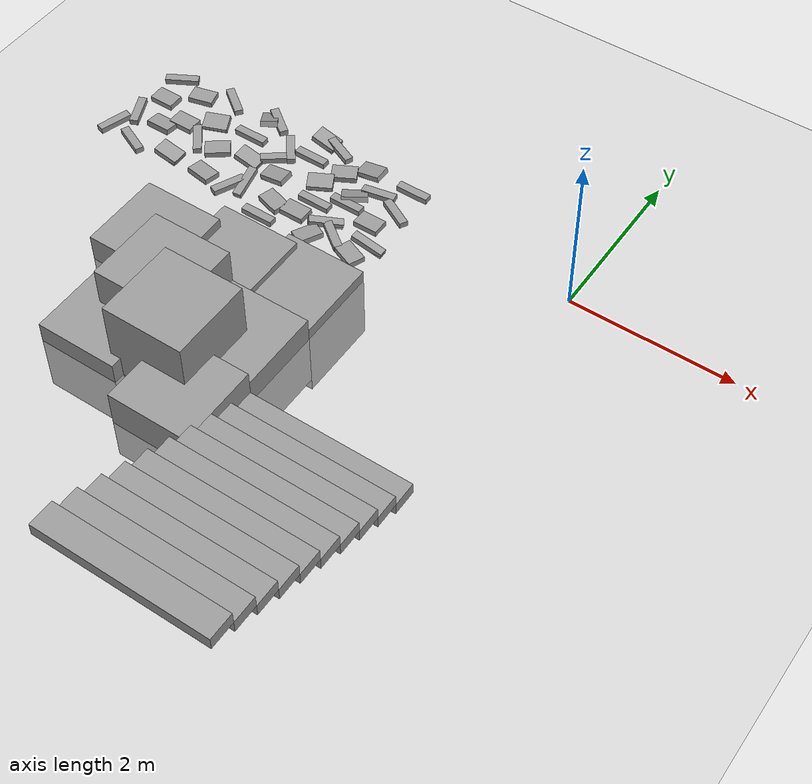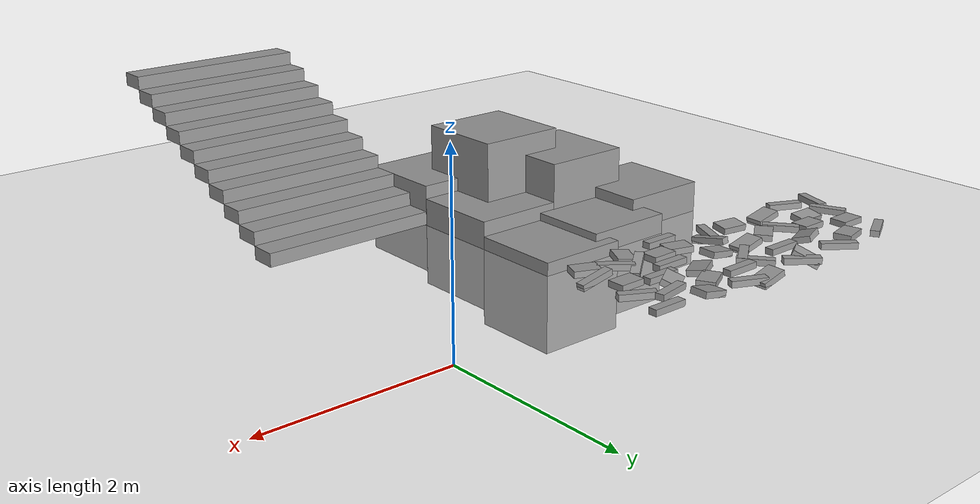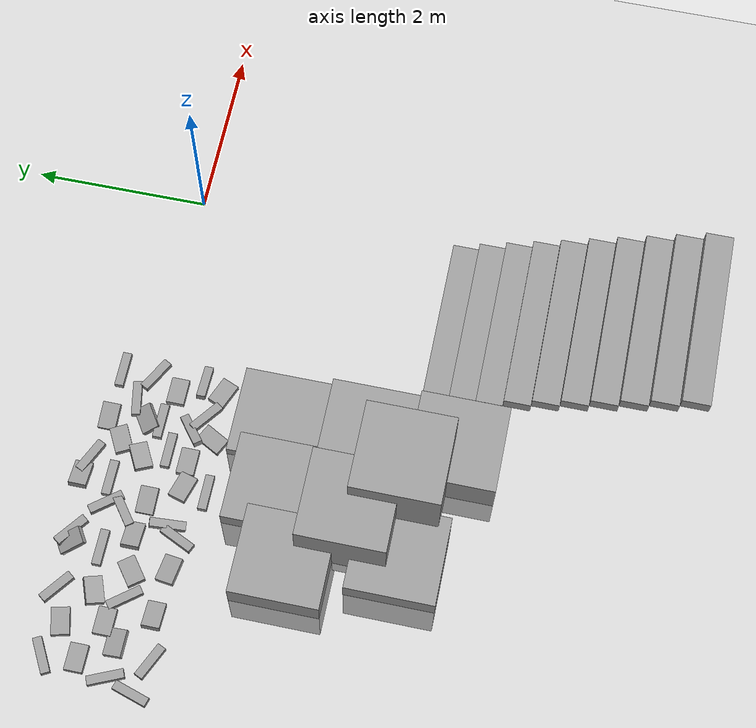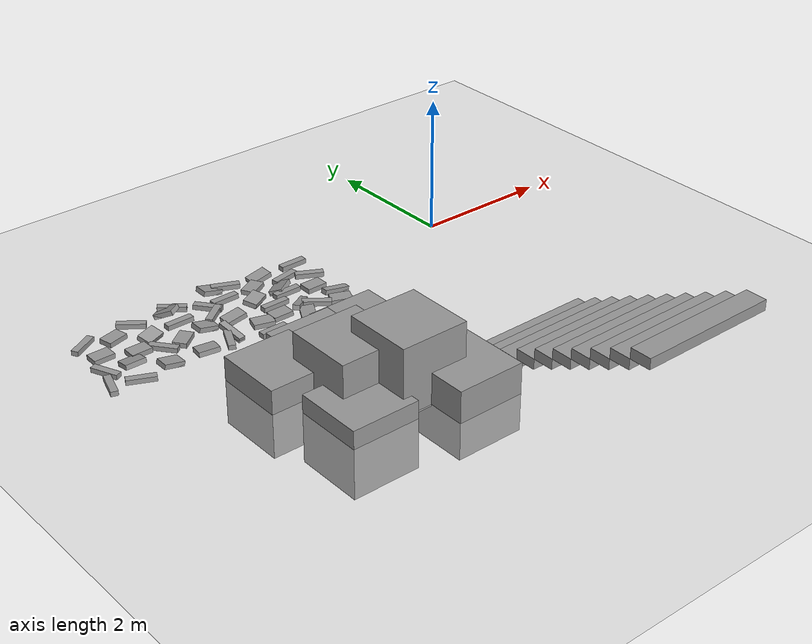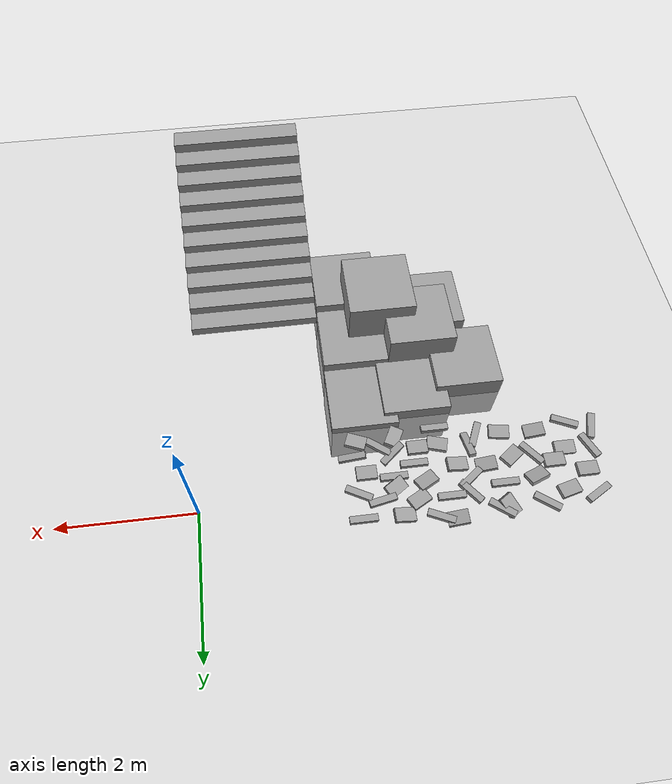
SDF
<sdf version="1.7">
 <world name="default">
  <model name="ground_plane">
   <static>1</static>
   <link name="link">
    <collision name="collision">
     <geometry><plane><normal>0 0 1</normal><size>100 100</size></plane></geometry>
     <surface><friction><ode><mu>200</mu><mu2>200</mu2></ode></friction></surface>
    </collision>
    <visual name="visual">
     <cast_shadows>0</cast_shadows>
     <geometry><plane><normal>0 0 1</normal><size>100 100</size></plane></geometry>
     <material>
      <script><uri>file://media/materials/scripts/gazebo.material</uri><name>Gazebo/Grey</name></script>
     </material>
    </visual>
   </link>
  </model>
  <model name="box_0.4_0.1_0.07_6">
   <pose>-2.83467 -0.561057 0 0 0.21967 0.65136</pose>
   <link name="Stairs_14">
    <visual name="Stairs_14_Visual_0">
     <pose>0 0 0.035 0 -0 0</pose>
     <geometry><box><size>0.4 0.1 0.07</size></box></geometry>
     <material>
      <script><uri>file://media/materials/scripts/gazebo.material</uri><name>Gazebo/Grey</name></script>
      <ambient>1 1 1 1</ambient>
     </material>
     <meta><layer>0</layer></meta>
    </visual>
    <collision name="Stairs_14_Collision_0">
     <geometry><box><size>0.4 0.1 0.07</size></box></geometry>
     <pose>0 0 0.035 0 -0 0</pose>
     <surface><friction><ode><mu>200</mu><mu2>200</mu2></ode></friction></surface>
    </collision>
   </link>
   <static>1</static>
  </model>
  <model name="box_0.4_0.1_0.07_7">
   <pose>-3.9527 -0.560939 0 0 -0.198986 1.69782</pose>
   <link name="Stairs_14">
    <visual name="Stairs_14_Visual_0">
     <pose>0 0 0.035 0 -0 0</pose>
     <geometry><box><size>0.4 0.1 0.07</size></box></geometry>
     <material>
      <script><uri>file://media/materials/scripts/gazebo.material</uri><name>Gazebo/Grey</name></script>
      <ambient>1 1 1 1</ambient>
     </material>
     <meta><layer>0</layer></meta>
    </visual>
    <collision name="Stairs_14_Collision_0">
     <geometry><box><size>0.4 0.1 0.07</size></box></geometry>
     <pose>0 0 0.035 0 -0 0</pose>
     <surface><friction><ode><mu>200</mu><mu2>200</mu2></ode></friction></surface>
    </collision>
   </link>
   <static>1</static>
  </model>
  <model name="box_0.4_0.1_0.07_8">
   <pose>-3.35327 0.459325 0 0 0 -0.427504</pose>
   <link name="Stairs_14">
    <visual name="Stairs_14_Visual_0">
     <pose>0 0 0.035 0 -0 0</pose>
     <geometry><box><size>0.4 0.1 0.07</size></box></geometry>
     <material>
      <script><uri>file://media/materials/scripts/gazebo.material</uri><name>Gazebo/Grey</name></script>
      <ambient>1 1 1 1</ambient>
     </material>
     <meta><layer>0</layer></meta>
    </visual>
    <collision name="Stairs_14_Collision_0">
     <geometry><box><size>0.4 0.1 0.07</size></box></geometry>
     <pose>0 0 0.035 0 -0 0</pose>
     <surface><friction><ode><mu>200</mu><mu2>200</mu2></ode></friction></surface>
    </collision>
   </link>
   <static>1</static>
  </model>
  <model name="box_0.4_0.1_0.07_9">
   <pose>-3.84177 0.151803 0 0 0 -0.909347</pose>
   <link name="Stairs_14">
    <visual name="Stairs_14_Visual_0">
     <pose>0 0 0.035 0 -0 0</pose>
     <geometry><box><size>0.4 0.1 0.07</size></box></geometry>
     <material>
      <script><uri>file://media/materials/scripts/gazebo.material</uri><name>Gazebo/Grey</name></script>
      <ambient>1 1 1 1</ambient>
     </material>
     <meta><layer>0</layer></meta>
    </visual>
    <collision name="Stairs_14_Collision_0">
     <geometry><box><size>0.4 0.1 0.07</size></box></geometry>
     <pose>0 0 0.035 0 -0 0</pose>
     <surface><friction><ode><mu>200</mu><mu2>200</mu2></ode></friction></surface>
    </collision>
   </link>
   <static>1</static>
  </model>
  <model name="box_0.4_0.1_0.07_10">
   <pose>-2.5817 0.133983 0 0 -0 0.188316</pose>
   <link name="Stairs_14">
    <visual name="Stairs_14_Visual_0">
     <pose>0 0 0.035 0 -0 0</pose>
     <geometry><box><size>0.4 0.1 0.07</size></box></geometry>
     <material>
      <script><uri>file://media/materials/scripts/gazebo.material</uri><name>Gazebo/Grey</name></script>
      <ambient>1 1 1 1</ambient>
     </material>
     <meta><layer>0</layer></meta>
    </visual>
    <collision name="Stairs_14_Collision_0">
     <geometry><box><size>0.4 0.1 0.07</size></box></geometry>
     <pose>0 0 0.035 0 -0 0</pose>
     <surface><friction><ode><mu>200</mu><mu2>200</mu2></ode></friction></surface>
    </collision>
   </link>
   <static>1</static>
  </model>
  <model name="box_0.3_0.2_0.1_1">
   <pose>-2.32668 -0.803117 0 0 0 -0.389703</pose>
   <link name="Stairs_9">
    <visual name="Stairs_9_Visual_0">
     <pose>0 0 0.035 0 -0 0</pose>
     <geometry><box><size>0.3 0.2 0.07</size></box></geometry>
     <material>
      <script><uri>file://media/materials/scripts/gazebo.material</uri><name>Gazebo/Grey</name></script>
      <ambient>1 1 1 1</ambient>
     </material>
     <meta><layer>0</layer></meta>
    </visual>
    <collision name="Stairs_9_Collision_0">
     <geometry><box><size>0.3 0.2 0.07</size></box></geometry>
     <pose>0 0 0.035 0 -0 0</pose>
     <surface><friction><ode><mu>200</mu><mu2>200</mu2></ode></friction></surface>
    </collision>
   </link>
   <static>1</static>
  </model>
  <model name="box_0.3_0.2_0.1_2">
   <pose>-3.24691 -0.07902 0 0.162224 -0 0.485941</pose>
   <link name="Stairs_9">
    <visual name="Stairs_9_Visual_0">
     <pose>0 0 0.035 0 -0 0</pose>
     <geometry><box><size>0.3 0.2 0.07</size></box></geometry>
     <material>
      <script><uri>file://media/materials/scripts/gazebo.material</uri><name>Gazebo/Grey</name></script>
      <ambient>1 1 1 1</ambient>
     </material>
     <meta><layer>0</layer></meta>
    </visual>
    <collision name="Stairs_9_Collision_0">
     <geometry><box><size>0.3 0.2 0.07</size></box></geometry>
     <pose>0 0 0.035 0 -0 0</pose>
     <surface><friction><ode><mu>200</mu><mu2>200</mu2></ode></friction></surface>
    </collision>
   </link>
   <static>1</static>
  </model>
  <model name="box_0.3_0.2_0.1_4">
   <pose>-3.50067 -0.629827 0 0 0 -0.287884</pose>
   <link name="Stairs_9">
    <visual name="Stairs_9_Visual_0">
     <pose>0 0 0.035 0 -0 0</pose>
     <geometry><box><size>0.3 0.2 0.07</size></box></geometry>
     <material>
      <script><uri>file://media/materials/scripts/gazebo.material</uri><name>Gazebo/Grey</name></script>
      <ambient>1 1 1 1</ambient>
     </material>
     <meta><layer>0</layer></meta>
    </visual>
    <collision name="Stairs_9_Collision_0">
     <geometry><box><size>0.3 0.2 0.07</size></box></geometry>
     <pose>0 0 0.035 0 -0 0</pose>
     <surface><friction><ode><mu>200</mu><mu2>200</mu2></ode></friction></surface>
    </collision>
   </link>
   <static>1</static>
  </model>
  <model name="box_0.3_0.2_0.1_6">
   <pose>-2.40905 -0.299713 0 0 -0 0</pose>
   <link name="Stairs_9">
    <visual name="Stairs_9_Visual_0">
     <pose>0 0 0.035 0 -0 0</pose>
     <geometry><box><size>0.3 0.2 0.07</size></box></geometry>
     <material>
      <script><uri>file://media/materials/scripts/gazebo.material</uri><name>Gazebo/Grey</name></script>
      <ambient>1 1 1 1</ambient>
     </material>
     <meta><layer>0</layer></meta>
    </visual>
    <collision name="Stairs_9_Collision_0">
     <geometry><box><size>0.3 0.2 0.07</size></box></geometry>
     <pose>0 0 0.035 0 -0 0</pose>
     <surface><friction><ode><mu>200</mu><mu2>200</mu2></ode></friction></surface>
    </collision>
   </link>
   <static>1</static>
  </model>
  <model name="box_0.3_0.2_0.1_11">
   <pose>-4.83425 0.032148 0 0.293641 -0 0.364797</pose>
   <link name="Stairs_9">
    <visual name="Stairs_9_Visual_0">
     <pose>0 0 0.035 0 -0 0</pose>
     <geometry><box><size>0.3 0.2 0.07</size></box></geometry>
     <material>
      <script><uri>file://media/materials/scripts/gazebo.material</uri><name>Gazebo/Grey</name></script>
      <ambient>1 1 1 1</ambient>
     </material>
     <meta><layer>0</layer></meta>
    </visual>
    <collision name="Stairs_9_Collision_0">
     <geometry><box><size>0.3 0.2 0.07</size></box></geometry>
     <pose>0 0 0.035 0 -0 0</pose>
     <surface><friction><ode><mu>200</mu><mu2>200</mu2></ode></friction></surface>
    </collision>
   </link>
   <static>1</static>
  </model>
  <model name="box_0.3_0.2_0.1_13">
   <pose>-4.44487 -0.717451 0 -0.093999 -0 -0.154705</pose>
   <link name="Stairs_9">
    <visual name="Stairs_9_Visual_0">
     <pose>0 0 0.035 0 -0 0</pose>
     <geometry><box><size>0.3 0.2 0.07</size></box></geometry>
     <material>
      <script><uri>file://media/materials/scripts/gazebo.material</uri><name>Gazebo/Grey</name></script>
      <ambient>1 1 1 1</ambient>
     </material>
     <meta><layer>0</layer></meta>
    </visual>
    <collision name="Stairs_9_Collision_0">
     <geometry><box><size>0.3 0.2 0.07</size></box></geometry>
     <pose>0 0 0.035 0 -0 0</pose>
     <surface><friction><ode><mu>200</mu><mu2>200</mu2></ode></friction></surface>
    </collision>
   </link>
   <static>1</static>
  </model>
  <model name="box_0.3_0.2_0.1_18">
   <pose>-5.13742 -0.186069 0 0 -0 0</pose>
   <link name="Stairs_9">
    <visual name="Stairs_9_Visual_0">
     <pose>0 0 0.035 0 -0 0</pose>
     <geometry><box><size>0.3 0.2 0.07</size></box></geometry>
     <material>
      <script><uri>file://media/materials/scripts/gazebo.material</uri><name>Gazebo/Grey</name></script>
      <ambient>1 1 1 1</ambient>
     </material>
     <meta><layer>0</layer></meta>
    </visual>
    <collision name="Stairs_9_Collision_0">
     <geometry><box><size>0.3 0.2 0.07</size></box></geometry>
     <pose>0 0 0.035 0 -0 0</pose>
     <surface><friction><ode><mu>200</mu><mu2>200</mu2></ode></friction></surface>
    </collision>
   </link>
   <static>1</static>
  </model>
  <model name="box_0.4_0.1_0.07_13">
   <pose>-4.87489 0.421648 0 0 0 -0.645463</pose>
   <link name="Stairs_14">
    <visual name="Stairs_14_Visual_0">
     <pose>0 0 0.035 0 -0 0</pose>
     <geometry><box><size>0.4 0.1 0.07</size></box></geometry>
     <material>
      <script><uri>file://media/materials/scripts/gazebo.material</uri><name>Gazebo/Grey</name></script>
      <ambient>1 1 1 1</ambient>
     </material>
     <meta><layer>0</layer></meta>
    </visual>
    <collision name="Stairs_14_Collision_0">
     <geometry><box><size>0.4 0.1 0.07</size></box></geometry>
     <pose>0 0 0.035 0 -0 0</pose>
     <surface><friction><ode><mu>200</mu><mu2>200</mu2></ode></friction></surface>
    </collision>
   </link>
   <static>1</static>
  </model>
  <model name="box_0.4_0.1_0.07_15">
   <pose>-5.63027 0.375388 0 0 -0 0.50181</pose>
   <link name="Stairs_14">
    <visual name="Stairs_14_Visual_0">
     <pose>0 0 0.035 0 -0 0</pose>
     <geometry><box><size>0.4 0.1 0.07</size></box></geometry>
     <material>
      <script><uri>file://media/materials/scripts/gazebo.material</uri><name>Gazebo/Grey</name></script>
      <ambient>1 1 1 1</ambient>
     </material>
     <meta><layer>0</layer></meta>
    </visual>
    <collision name="Stairs_14_Collision_0">
     <geometry><box><size>0.4 0.1 0.07</size></box></geometry>
     <pose>0 0 0.035 0 -0 0</pose>
     <surface><friction><ode><mu>200</mu><mu2>200</mu2></ode></friction></surface>
    </collision>
   </link>
   <static>1</static>
  </model>
  <model name="box_0.4_0.1_0.07_16">
   <pose>-5.7174 -0.345289 0 0 0 -1.15775</pose>
   <link name="Stairs_14">
    <visual name="Stairs_14_Visual_0">
     <pose>0 0 0.035 0 -0 0</pose>
     <geometry><box><size>0.4 0.1 0.07</size></box></geometry>
     <material>
      <script><uri>file://media/materials/scripts/gazebo.material</uri><name>Gazebo/Grey</name></script>
      <ambient>1 1 1 1</ambient>
     </material>
     <meta><layer>0</layer></meta>
    </visual>
    <collision name="Stairs_14_Collision_0">
     <geometry><box><size>0.4 0.1 0.07</size></box></geometry>
     <pose>0 0 0.035 0 -0 0</pose>
     <surface><friction><ode><mu>200</mu><mu2>200</mu2></ode></friction></surface>
    </collision>
   </link>
   <static>1</static>
  </model>
  <model name="box_0.4_0.1_0.07_17">
   <pose>-5.45955 -0.765501 0 0 0 -0.432025</pose>
   <link name="Stairs_14">
    <visual name="Stairs_14_Visual_0">
     <pose>0 0 0.035 0 -0 0</pose>
     <geometry><box><size>0.4 0.1 0.07</size></box></geometry>
     <material>
      <script><uri>file://media/materials/scripts/gazebo.material</uri><name>Gazebo/Grey</name></script>
      <ambient>1 1 1 1</ambient>
     </material>
     <meta><layer>0</layer></meta>
    </visual>
    <collision name="Stairs_14_Collision_0">
     <geometry><box><size>0.4 0.1 0.07</size></box></geometry>
     <pose>0 0 0.035 0 -0 0</pose>
     <surface><friction><ode><mu>200</mu><mu2>200</mu2></ode></friction></surface>
    </collision>
   </link>
   <static>1</static>
  </model>
  <model name="box_0.4_0.1_0.07_22">
   <pose>-4.35317 0.072456 0 0 -0 0</pose>
   <link name="Stairs_14">
    <visual name="Stairs_14_Visual_0">
     <pose>0 0 0.035 0 -0 0</pose>
     <geometry><box><size>0.4 0.1 0.07</size></box></geometry>
     <material>
      <script><uri>file://media/materials/scripts/gazebo.material</uri><name>Gazebo/Grey</name></script>
      <ambient>1 1 1 1</ambient>
     </material>
     <meta><layer>0</layer></meta>
    </visual>
    <collision name="Stairs_14_Collision_0">
     <geometry><box><size>0.4 0.1 0.07</size></box></geometry>
     <pose>0 0 0.035 0 -0 0</pose>
     <surface><friction><ode><mu>200</mu><mu2>200</mu2></ode></friction></surface>
    </collision>
   </link>
   <static>1</static>
  </model>
  <model name="box_0.3_0.2_0.1_26">
   <pose>-2.84302 0.380803 0 0 -0.200079 0</pose>
   <link name="Stairs_9">
    <visual name="Stairs_9_Visual_0">
     <pose>0 0 0.035 0 -0 0</pose>
     <geometry><box><size>0.3 0.2 0.07</size></box></geometry>
     <material>
      <script><uri>file://media/materials/scripts/gazebo.material</uri><name>Gazebo/Grey</name></script>
      <ambient>1 1 1 1</ambient>
     </material>
     <meta><layer>0</layer></meta>
    </visual>
    <collision name="Stairs_9_Collision_0">
     <geometry><box><size>0.3 0.2 0.07</size></box></geometry>
     <pose>0 0 0.035 0 -0 0</pose>
     <surface><friction><ode><mu>200</mu><mu2>200</mu2></ode></friction></surface>
    </collision>
   </link>
   <static>1</static>
  </model>
  <model name="box_0.3_0.2_0.1_27">
   <pose>-4.33028 0.401558 0 0 -0.4283 -1.0174</pose>
   <link name="Stairs_9">
    <visual name="Stairs_9_Visual_0">
     <pose>0 0 0.035 0 -0 0</pose>
     <geometry><box><size>0.3 0.2 0.07</size></box></geometry>
     <material>
      <script><uri>file://media/materials/scripts/gazebo.material</uri><name>Gazebo/Grey</name></script>
      <ambient>1 1 1 1</ambient>
     </material>
     <meta><layer>0</layer></meta>
    </visual>
    <collision name="Stairs_9_Collision_0">
     <geometry><box><size>0.3 0.2 0.07</size></box></geometry>
     <pose>0 0 0.035 0 -0 0</pose>
     <surface><friction><ode><mu>200</mu><mu2>200</mu2></ode></friction></surface>
    </collision>
   </link>
   <static>1</static>
  </model>
  <model name="box_0.3_0.2_0.1_28">
   <pose>-3.72262 -0.283281 0 0 -0.157712 0</pose>
   <link name="Stairs_9">
    <visual name="Stairs_9_Visual_0">
     <pose>0 0 0.035 0 -0 0</pose>
     <geometry><box><size>0.3 0.2 0.07</size></box></geometry>
     <material>
      <script><uri>file://media/materials/scripts/gazebo.material</uri><name>Gazebo/Grey</name></script>
      <ambient>1 1 1 1</ambient>
     </material>
     <meta><layer>0</layer></meta>
    </visual>
    <collision name="Stairs_9_Collision_0">
     <geometry><box><size>0.3 0.2 0.07</size></box></geometry>
     <pose>0 0 0.035 0 -0 0</pose>
     <surface><friction><ode><mu>200</mu><mu2>200</mu2></ode></friction></surface>
    </collision>
   </link>
   <static>1</static>
  </model>
  <model name="box_0.3_0.2_0.1_29">
   <pose>-4.54474 -0.31953 0 0 -0 0.647578</pose>
   <link name="Stairs_9">
    <visual name="Stairs_9_Visual_0">
     <pose>0 0 0.035 0 -0 0</pose>
     <geometry><box><size>0.3 0.2 0.07</size></box></geometry>
     <material>
      <script><uri>file://media/materials/scripts/gazebo.material</uri><name>Gazebo/Grey</name></script>
      <ambient>1 1 1 1</ambient>
     </material>
     <meta><layer>0</layer></meta>
    </visual>
    <collision name="Stairs_9_Collision_0">
     <geometry><box><size>0.3 0.2 0.07</size></box></geometry>
     <pose>0 0 0.035 0 -0 0</pose>
     <surface><friction><ode><mu>200</mu><mu2>200</mu2></ode></friction></surface>
    </collision>
   </link>
   <static>1</static>
  </model>
  <model name="box_0.3_0.2_0.1_30">
   <pose>-2.88822 -0.819464 -0.007875 -0.086933 -0 1.07781</pose>
   <link name="Stairs_9">
    <visual name="Stairs_9_Visual_0">
     <pose>0 0 0.035 0 -0 0</pose>
     <geometry><box><size>0.3 0.2 0.07</size></box></geometry>
     <material>
      <script><uri>file://media/materials/scripts/gazebo.material</uri><name>Gazebo/Grey</name></script>
      <ambient>1 1 1 1</ambient>
     </material>
     <meta><layer>0</layer></meta>
    </visual>
    <collision name="Stairs_9_Collision_0">
     <geometry><box><size>0.3 0.2 0.07</size></box></geometry>
     <pose>0 0 0.035 0 -0 0</pose>
     <surface><friction><ode><mu>200</mu><mu2>200</mu2></ode></friction></surface>
    </collision>
   </link>
   <static>1</static>
  </model>
  <model name="box_0.4_0.1_0.07_23">
   <pose>-2.79254 -0.199709 0 0 -0 0</pose>
   <link name="Stairs_14">
    <visual name="Stairs_14_Visual_0">
     <pose>0 0 0.035 0 -0 0</pose>
     <geometry><box><size>0.4 0.1 0.07</size></box></geometry>
     <material>
      <script><uri>file://media/materials/scripts/gazebo.material</uri><name>Gazebo/Grey</name></script>
      <ambient>1 1 1 1</ambient>
     </material>
     <meta><layer>0</layer></meta>
    </visual>
    <collision name="Stairs_14_Collision_0">
     <geometry><box><size>0.4 0.1 0.07</size></box></geometry>
     <pose>0 0 0.035 0 -0 0</pose>
     <surface><friction><ode><mu>200</mu><mu2>200</mu2></ode></friction></surface>
    </collision>
   </link>
   <static>1</static>
  </model>
  <model name="box_0.4_0.1_0.07_24">
   <pose>-3.55858 0.179353 0 0 -0 0</pose>
   <link name="Stairs_14">
    <visual name="Stairs_14_Visual_0">
     <pose>0 0 0.035 0 -0 0</pose>
     <geometry><box><size>0.4 0.1 0.07</size></box></geometry>
     <material>
      <script><uri>file://media/materials/scripts/gazebo.material</uri><name>Gazebo/Grey</name></script>
      <ambient>1 1 1 1</ambient>
     </material>
     <meta><layer>0</layer></meta>
    </visual>
    <collision name="Stairs_14_Collision_0">
     <geometry><box><size>0.4 0.1 0.07</size></box></geometry>
     <pose>0 0 0.035 0 -0 0</pose>
     <surface><friction><ode><mu>200</mu><mu2>200</mu2></ode></friction></surface>
    </collision>
   </link>
   <static>1</static>
  </model>
  <model name="box_0.4_0.1_0.07_26">
   <pose>-4.08505 -0.7108 0 0 -0 1.13869</pose>
   <link name="Stairs_14">
    <visual name="Stairs_14_Visual_0">
     <pose>0 0 0.035 0 -0 0</pose>
     <geometry><box><size>0.4 0.1 0.07</size></box></geometry>
     <material>
      <script><uri>file://media/materials/scripts/gazebo.material</uri><name>Gazebo/Grey</name></script>
      <ambient>1 1 1 1</ambient>
     </material>
     <meta><layer>0</layer></meta>
    </visual>
    <collision name="Stairs_14_Collision_0">
     <geometry><box><size>0.4 0.1 0.07</size></box></geometry>
     <pose>0 0 0.035 0 -0 0</pose>
     <surface><friction><ode><mu>200</mu><mu2>200</mu2></ode></friction></surface>
    </collision>
   </link>
   <static>1</static>
  </model>
  <model name="box_0.4_0.1_0.07_27">
   <pose>-3.51215 -0.893933 0 0 -0 0</pose>
   <link name="Stairs_14">
    <visual name="Stairs_14_Visual_0">
     <pose>0 0 0.035 0 -0 0</pose>
     <geometry><box><size>0.4 0.1 0.07</size></box></geometry>
     <material>
      <script><uri>file://media/materials/scripts/gazebo.material</uri><name>Gazebo/Grey</name></script>
      <ambient>1 1 1 1</ambient>
     </material>
     <meta><layer>0</layer></meta>
    </visual>
    <collision name="Stairs_14_Collision_0">
     <geometry><box><size>0.4 0.1 0.07</size></box></geometry>
     <pose>0 0 0.035 0 -0 0</pose>
     <surface><friction><ode><mu>200</mu><mu2>200</mu2></ode></friction></surface>
    </collision>
   </link>
   <static>1</static>
  </model>
  <model name="box_0.3_0.2_0.1_31">
   <pose>-5.23263 0.276548 0 0 -0 0.243446</pose>
   <link name="Stairs_9">
    <visual name="Stairs_9_Visual_0">
     <pose>0 0 0.035 0 -0 0</pose>
     <geometry><box><size>0.3 0.2 0.07</size></box></geometry>
     <material>
      <script><uri>file://media/materials/scripts/gazebo.material</uri><name>Gazebo/Grey</name></script>
      <ambient>1 1 1 1</ambient>
     </material>
     <meta><layer>0</layer></meta>
    </visual>
    <collision name="Stairs_9_Collision_0">
     <geometry><box><size>0.3 0.2 0.07</size></box></geometry>
     <pose>0 0 0.035 0 -0 0</pose>
     <surface><friction><ode><mu>200</mu><mu2>200</mu2></ode></friction></surface>
    </collision>
   </link>
   <static>1</static>
  </model>
  <model name="box_0.3_0.2_0.1_33">
   <pose>-3.58843 0.511656 0 0 0.248657 0</pose>
   <link name="Stairs_9">
    <visual name="Stairs_9_Visual_0">
     <pose>0 0 0.035 0 -0 0</pose>
     <geometry><box><size>0.3 0.2 0.07</size></box></geometry>
     <material>
      <script><uri>file://media/materials/scripts/gazebo.material</uri><name>Gazebo/Grey</name></script>
      <ambient>1 1 1 1</ambient>
     </material>
     <meta><layer>0</layer></meta>
    </visual>
    <collision name="Stairs_9_Collision_0">
     <geometry><box><size>0.3 0.2 0.07</size></box></geometry>
     <pose>0 0 0.035 0 -0 0</pose>
     <surface><friction><ode><mu>200</mu><mu2>200</mu2></ode></friction></surface>
    </collision>
   </link>
   <static>1</static>
  </model>
  <model name="box_0.3_0.2_0.1_34">
   <pose>-4.15327 -0.23297 0 0 0.224487 0</pose>
   <link name="Stairs_9">
    <visual name="Stairs_9_Visual_0">
     <pose>0 0 0.035 0 -0 0</pose>
     <geometry><box><size>0.3 0.2 0.07</size></box></geometry>
     <material>
      <script><uri>file://media/materials/scripts/gazebo.material</uri><name>Gazebo/Grey</name></script>
      <ambient>1 1 1 1</ambient>
     </material>
     <meta><layer>0</layer></meta>
    </visual>
    <collision name="Stairs_9_Collision_0">
     <geometry><box><size>0.3 0.2 0.07</size></box></geometry>
     <pose>0 0 0.035 0 -0 0</pose>
     <surface><friction><ode><mu>200</mu><mu2>200</mu2></ode></friction></surface>
    </collision>
   </link>
   <static>1</static>
  </model>
  <model name="box_0.3_0.2_0.1_36">
   <pose>-3.2043 -0.611051 0 0 -0 0</pose>
   <link name="Stairs_9">
    <visual name="Stairs_9_Visual_0">
     <pose>0 0 0.035 0 -0 0</pose>
     <geometry><box><size>0.3 0.2 0.07</size></box></geometry>
     <material>
      <script><uri>file://media/materials/scripts/gazebo.material</uri><name>Gazebo/Grey</name></script>
      <ambient>1 1 1 1</ambient>
     </material>
     <meta><layer>0</layer></meta>
    </visual>
    <collision name="Stairs_9_Collision_0">
     <geometry><box><size>0.3 0.2 0.07</size></box></geometry>
     <pose>0 0 0.035 0 -0 0</pose>
     <surface><friction><ode><mu>200</mu><mu2>200</mu2></ode></friction></surface>
    </collision>
   </link>
   <static>1</static>
  </model>
  <model name="box_0.3_0.2_0.1_37">
   <pose>-5.33812 -0.362217 0 -0.173222 0 0</pose>
   <link name="Stairs_9">
    <visual name="Stairs_9_Visual_0">
     <pose>0 0 0.035 0 -0 0</pose>
     <geometry><box><size>0.3 0.2 0.07</size></box></geometry>
     <material>
      <script><uri>file://media/materials/scripts/gazebo.material</uri><name>Gazebo/Grey</name></script>
      <ambient>1 1 1 1</ambient>
     </material>
     <meta><layer>0</layer></meta>
    </visual>
    <collision name="Stairs_9_Collision_0">
     <geometry><box><size>0.3 0.2 0.07</size></box></geometry>
     <pose>0 0 0.035 0 -0 0</pose>
     <surface><friction><ode><mu>200</mu><mu2>200</mu2></ode></friction></surface>
    </collision>
   </link>
   <static>1</static>
  </model>
  <model name="box_0.3_0.2_0.1_38">
   <pose>-4.97391 -0.676954 0 0 0.207576 0</pose>
   <link name="Stairs_9">
    <visual name="Stairs_9_Visual_0">
     <pose>0 0 0.035 0 -0 0</pose>
     <geometry><box><size>0.3 0.2 0.07</size></box></geometry>
     <material>
      <script><uri>file://media/materials/scripts/gazebo.material</uri><name>Gazebo/Grey</name></script>
      <ambient>1 1 1 1</ambient>
     </material>
     <meta><layer>0</layer></meta>
    </visual>
    <collision name="Stairs_9_Collision_0">
     <geometry><box><size>0.3 0.2 0.07</size></box></geometry>
     <pose>0 0 0.035 0 -0 0</pose>
     <surface><friction><ode><mu>200</mu><mu2>200</mu2></ode></friction></surface>
    </collision>
   </link>
   <static>1</static>
  </model>
  <model name="box_0.3_0.2_0.1_42">
   <pose>-2.78828 -0.052875 0 -0.371727 -0 0.579103</pose>
   <link name="Stairs_9">
    <visual name="Stairs_9_Visual_0">
     <pose>0 0 0.035 0 -0 0</pose>
     <geometry><box><size>0.3 0.2 0.07</size></box></geometry>
     <material>
      <script><uri>file://media/materials/scripts/gazebo.material</uri><name>Gazebo/Grey</name></script>
      <ambient>1 1 1 1</ambient>
     </material>
     <meta><layer>0</layer></meta>
    </visual>
    <collision name="Stairs_9_Collision_0">
     <geometry><box><size>0.3 0.2 0.07</size></box></geometry>
     <pose>0 0 0.035 0 -0 0</pose>
     <surface><friction><ode><mu>200</mu><mu2>200</mu2></ode></friction></surface>
    </collision>
   </link>
   <static>1</static>
  </model>
  <model name="box_0.3_0.2_0.1_44">
   <pose>-5.57863 0.004751 0 0 -0 0</pose>
   <link name="Stairs_9">
    <visual name="Stairs_9_Visual_0">
     <pose>0 0 0.035 0 -0 0</pose>
     <geometry><box><size>0.3 0.2 0.07</size></box></geometry>
     <material>
      <script><uri>file://media/materials/scripts/gazebo.material</uri><name>Gazebo/Grey</name></script>
      <ambient>1 1 1 1</ambient>
     </material>
     <meta><layer>0</layer></meta>
    </visual>
    <collision name="Stairs_9_Collision_0">
     <geometry><box><size>0.3 0.2 0.07</size></box></geometry>
     <pose>0 0 0.035 0 -0 0</pose>
     <surface><friction><ode><mu>200</mu><mu2>200</mu2></ode></friction></surface>
    </collision>
   </link>
   <static>1</static>
  </model>
  <model name="box_0.4_0.1_0.07_30">
   <pose>-3.88412 -0.047896 0 0 -0 0.646358</pose>
   <link name="Stairs_14">
    <visual name="Stairs_14_Visual_0">
     <pose>0 0 0.035 0 -0 0</pose>
     <geometry><box><size>0.4 0.1 0.07</size></box></geometry>
     <material>
      <script><uri>file://media/materials/scripts/gazebo.material</uri><name>Gazebo/Grey</name></script>
      <ambient>1 1 1 1</ambient>
     </material>
     <meta><layer>0</layer></meta>
    </visual>
    <collision name="Stairs_14_Collision_0">
     <geometry><box><size>0.4 0.1 0.07</size></box></geometry>
     <pose>0 0 0.035 0 -0 0</pose>
     <surface><friction><ode><mu>200</mu><mu2>200</mu2></ode></friction></surface>
    </collision>
   </link>
   <static>1</static>
  </model>
  <model name="box_0.4_0.1_0.07_31">
   <pose>-2.24494 -0.568367 0 0 0.191516 0</pose>
   <link name="Stairs_14">
    <visual name="Stairs_14_Visual_0">
     <pose>0 0 0.035 0 -0 0</pose>
     <geometry><box><size>0.4 0.1 0.07</size></box></geometry>
     <material>
      <script><uri>file://media/materials/scripts/gazebo.material</uri><name>Gazebo/Grey</name></script>
      <ambient>1 1 1 1</ambient>
     </material>
     <meta><layer>0</layer></meta>
    </visual>
    <collision name="Stairs_14_Collision_0">
     <geometry><box><size>0.4 0.1 0.07</size></box></geometry>
     <pose>0 0 0.035 0 -0 0</pose>
     <surface><friction><ode><mu>200</mu><mu2>200</mu2></ode></friction></surface>
    </collision>
   </link>
   <static>1</static>
  </model>
  <model name="box_0.4_0.1_0.07_32">
   <pose>-2.26101 -0.007459 0 0 0 -0.492553</pose>
   <link name="Stairs_14">
    <visual name="Stairs_14_Visual_0">
     <pose>0 0 0.035 0 -0 0</pose>
     <geometry><box><size>0.4 0.1 0.07</size></box></geometry>
     <material>
      <script><uri>file://media/materials/scripts/gazebo.material</uri><name>Gazebo/Grey</name></script>
      <ambient>1 1 1 1</ambient>
     </material>
     <meta><layer>0</layer></meta>
    </visual>
    <collision name="Stairs_14_Collision_0">
     <geometry><box><size>0.4 0.1 0.07</size></box></geometry>
     <pose>0 0 0.035 0 -0 0</pose>
     <surface><friction><ode><mu>200</mu><mu2>200</mu2></ode></friction></surface>
    </collision>
   </link>
   <static>1</static>
  </model>
  <model name="box_0.4_0.1_0.07_33">
   <pose>-2.2734 0.372881 0 0 -0 0</pose>
   <link name="Stairs_14">
    <visual name="Stairs_14_Visual_0">
     <pose>0 0 0.035 0 -0 0</pose>
     <geometry><box><size>0.4 0.1 0.07</size></box></geometry>
     <material>
      <script><uri>file://media/materials/scripts/gazebo.material</uri><name>Gazebo/Grey</name></script>
      <ambient>1 1 1 1</ambient>
     </material>
     <meta><layer>0</layer></meta>
    </visual>
    <collision name="Stairs_14_Collision_0">
     <geometry><box><size>0.4 0.1 0.07</size></box></geometry>
     <pose>0 0 0.035 0 -0 0</pose>
     <surface><friction><ode><mu>200</mu><mu2>200</mu2></ode></friction></surface>
    </collision>
   </link>
   <static>1</static>
  </model>
  <model name="box_0.4_0.1_0.07_39">
   <pose>-3.1139 -0.370835 0 0 -0 0</pose>
   <link name="Stairs_14">
    <visual name="Stairs_14_Visual_0">
     <pose>0 0 0.035 0 -0 0</pose>
     <geometry><box><size>0.4 0.1 0.07</size></box></geometry>
     <material>
      <script><uri>file://media/materials/scripts/gazebo.material</uri><name>Gazebo/Grey</name></script>
      <ambient>1 1 1 1</ambient>
     </material>
     <meta><layer>0</layer></meta>
    </visual>
    <collision name="Stairs_14_Collision_0">
     <geometry><box><size>0.4 0.1 0.07</size></box></geometry>
     <pose>0 0 0.035 0 -0 0</pose>
     <surface><friction><ode><mu>200</mu><mu2>200</mu2></ode></friction></surface>
    </collision>
   </link>
   <static>1</static>
  </model>
  <model name="box_0.3_0.2_0.1_50">
   <pose>-3.09288 0.177307 0 0 -0 0.489225</pose>
   <link name="Stairs_9">
    <visual name="Stairs_9_Visual_0">
     <pose>0 0 0.035 0 -0 0</pose>
     <geometry><box><size>0.3 0.2 0.07</size></box></geometry>
     <material>
      <script><uri>file://media/materials/scripts/gazebo.material</uri><name>Gazebo/Grey</name></script>
      <ambient>1 1 1 1</ambient>
     </material>
     <meta><layer>0</layer></meta>
    </visual>
    <collision name="Stairs_9_Collision_0">
     <geometry><box><size>0.3 0.2 0.07</size></box></geometry>
     <pose>0 0 0.035 0 -0 0</pose>
     <surface><friction><ode><mu>200</mu><mu2>200</mu2></ode></friction></surface>
    </collision>
   </link>
   <static>1</static>
  </model>
  <model name="stair-3">
   <pose>-1 -4.5 0 0 -0 0</pose>
   <link name="Stairs_6">
    <visual name="Stairs_6_Visual_0">
     <pose>0 1.35 0.075 0 -0 0</pose>
     <geometry><box><size>2 0.3 0.15</size></box></geometry>
     <material>
      <script><uri>file://media/materials/scripts/gazebo.material</uri><name>Gazebo/Grey</name></script>
      <ambient>1 1 1 1</ambient>
     </material>
     <meta><layer>0</layer></meta>
    </visual>
    <collision name="Stairs_6_Collision_0">
     <geometry><box><size>2 0.3 0.15</size></box></geometry>
     <pose>0 1.35 0.075 0 -0 0</pose>
    </collision>
    <visual name="Stairs_6_Visual_1">
     <pose>0 1.05 0.225 0 -0 0</pose>
     <geometry><box><size>2 0.3 0.15</size></box></geometry>
     <material>
      <script><uri>file://media/materials/scripts/gazebo.material</uri><name>Gazebo/Grey</name></script>
      <ambient>1 1 1 1</ambient>
     </material>
     <meta><layer>0</layer></meta>
    </visual>
    <collision name="Stairs_6_Collision_1">
     <geometry><box><size>2 0.3 0.15</size></box></geometry>
     <pose>0 1.05 0.225 0 -0 0</pose>
     <surface><friction><ode><mu>200</mu><mu2>200</mu2></ode></friction></surface>
    </collision>
    <visual name="Stairs_6_Visual_2">
     <pose>0 0.75 0.375 0 -0 0</pose>
     <geometry><box><size>2 0.3 0.15</size></box></geometry>
     <material>
      <script><uri>file://media/materials/scripts/gazebo.material</uri><name>Gazebo/Grey</name></script>
      <ambient>1 1 1 1</ambient>
     </material>
     <meta><layer>0</layer></meta>
    </visual>
    <collision name="Stairs_6_Collision_2">
     <geometry><box><size>2 0.3 0.15</size></box></geometry>
     <pose>0 0.75 0.375 0 -0 0</pose>
    </collision>
    <visual name="Stairs_6_Visual_3">
     <pose>0 0.45 0.525 0 -0 0</pose>
     <geometry><box><size>2 0.3 0.15</size></box></geometry>
     <material>
      <script><uri>file://media/materials/scripts/gazebo.material</uri><name>Gazebo/Grey</name></script>
      <ambient>1 1 1 1</ambient>
     </material>
     <meta><layer>0</layer></meta>
    </visual>
    <collision name="Stairs_6_Collision_3">
     <geometry><box><size>2 0.3 0.15</size></box></geometry>
     <pose>0 0.45 0.525 0 -0 0</pose>
    </collision>
    <visual name="Stairs_6_Visual_4">
     <pose>0 0.15 0.675 0 -0 0</pose>
     <geometry><box><size>2 0.3 0.15</size></box></geometry>
     <material>
      <script><uri>file://media/materials/scripts/gazebo.material</uri><name>Gazebo/Grey</name></script>
      <ambient>1 1 1 1</ambient>
     </material>
     <meta><layer>0</layer></meta>
    </visual>
    <collision name="Stairs_6_Collision_4">
     <geometry><box><size>2 0.3 0.15</size></box></geometry>
     <pose>0 0.15 0.675 0 -0 0</pose>
    </collision>
    <visual name="Stairs_6_Visual_5">
     <pose>0 -0.15 0.825 0 -0 0</pose>
     <geometry><box><size>2 0.3 0.15</size></box></geometry>
     <material>
      <script><uri>file://media/materials/scripts/gazebo.material</uri><name>Gazebo/Grey</name></script>
      <ambient>1 1 1 1</ambient>
     </material>
     <meta><layer>0</layer></meta>
    </visual>
    <collision name="Stairs_6_Collision_5">
     <geometry><box><size>2 0.3 0.15</size></box></geometry>
     <pose>0 -0.15 0.825 0 -0 0</pose>
    </collision>
    <visual name="Stairs_6_Visual_6">
     <pose>0 -0.45 0.975 0 -0 0</pose>
     <geometry><box><size>2 0.3 0.15</size></box></geometry>
     <material>
      <script><uri>file://media/materials/scripts/gazebo.material</uri><name>Gazebo/Grey</name></script>
      <ambient>1 1 1 1</ambient>
     </material>
     <meta><layer>0</layer></meta>
    </visual>
    <collision name="Stairs_6_Collision_6">
     <geometry><box><size>2 0.3 0.15</size></box></geometry>
     <pose>0 -0.45 0.975 0 -0 0</pose>
    </collision>
    <visual name="Stairs_6_Visual_7">
     <pose>0 -0.75 1.125 0 -0 0</pose>
     <geometry><box><size>2 0.3 0.15</size></box></geometry>
     <material>
      <script><uri>file://media/materials/scripts/gazebo.material</uri><name>Gazebo/Grey</name></script>
      <ambient>1 1 1 1</ambient>
     </material>
     <meta><layer>0</layer></meta>
    </visual>
    <collision name="Stairs_6_Collision_7">
     <geometry><box><size>2 0.3 0.15</size></box></geometry>
     <pose>0 -0.75 1.125 0 -0 0</pose>
    </collision>
    <visual name="Stairs_6_Visual_8">
     <pose>0 -1.05 1.275 0 -0 0</pose>
     <geometry><box><size>2 0.3 0.15</size></box></geometry>
     <material>
      <script><uri>file://media/materials/scripts/gazebo.material</uri><name>Gazebo/Grey</name></script>
      <ambient>1 1 1 1</ambient>
     </material>
     <meta><layer>0</layer></meta>
    </visual>
    <collision name="Stairs_6_Collision_8">
     <geometry><box><size>2 0.3 0.15</size></box></geometry>
     <pose>0 -1.05 1.275 0 -0 0</pose>
    </collision>
    <visual name="Stairs_6_Visual_9">
     <pose>0 -1.35 1.425 0 -0 0</pose>
     <geometry><box><size>2 0.3 0.15</size></box></geometry>
     <material>
      <script><uri>file://media/materials/scripts/gazebo.material</uri><name>Gazebo/Grey</name></script>
      <ambient>1 1 1 1</ambient>
     </material>
     <meta><layer>0</layer></meta>
    </visual>
    <collision name="Stairs_6_Collision_9">
     <geometry><box><size>2 0.3 0.15</size></box></geometry>
     <pose>0 -1.35 1.425 0 -0 0</pose>
    </collision>
   </link>
   <static>1</static>
  </model>
  <model name="box_0.4_0.1_0.07_9_clone">
   <pose>-4.84328 -0.323003 0 0 0 -0.909347</pose>
   <link name="Stairs_14">
    <visual name="Stairs_14_Visual_0">
     <pose>0 0 0.035 0 -0 0</pose>
     <geometry><box><size>0.4 0.1 0.07</size></box></geometry>
     <material>
      <script><uri>file://media/materials/scripts/gazebo.material</uri><name>Gazebo/Grey</name></script>
      <ambient>1 1 1 1</ambient>
     </material>
     <meta><layer>0</layer></meta>
    </visual>
    <collision name="Stairs_14_Collision_0">
     <geometry><box><size>0.4 0.1 0.07</size></box></geometry>
     <pose>0 0 0.035 0 -0 0</pose>
     <surface><friction><ode><mu>200</mu><mu2>200</mu2></ode></friction></surface>
    </collision>
   </link>
   <static>1</static>
  </model>
  <model name="box_0.4_0.1_0.07_28_clone_3_clone_4">
   <pose>-5.8306 -0.650176 0 0 -0 1.2714</pose>
   <link name="Stairs_14">
    <visual name="Stairs_14_Visual_0">
     <pose>0 0 0.035 0 -0 0</pose>
     <geometry><box><size>0.4 0.1 0.07</size></box></geometry>
     <material>
      <script><uri>file://media/materials/scripts/gazebo.material</uri><name>Gazebo/Grey</name></script>
      <ambient>1 1 1 1</ambient>
     </material>
     <meta><layer>0</layer></meta>
    </visual>
    <collision name="Stairs_14_Collision_0">
     <geometry><box><size>0.4 0.1 0.07</size></box></geometry>
     <pose>0 0 0.035 0 -0 0</pose>
     <surface><friction><ode><mu>200</mu><mu2>200</mu2></ode></friction></surface>
    </collision>
   </link>
   <static>1</static>
  </model>
  <model name="box_0.4_0.1_0.07_13_clone">
   <pose>-4.2258 0.441304 0 0 0 -0.645463</pose>
   <link name="Stairs_14">
    <visual name="Stairs_14_Visual_0">
     <pose>0 0 0.035 0 -0 0</pose>
     <geometry><box><size>0.4 0.1 0.07</size></box></geometry>
     <material>
      <script><uri>file://media/materials/scripts/gazebo.material</uri><name>Gazebo/Grey</name></script>
      <ambient>1 1 1 1</ambient>
     </material>
     <meta><layer>0</layer></meta>
    </visual>
    <collision name="Stairs_14_Collision_0">
     <geometry><box><size>0.4 0.1 0.07</size></box></geometry>
     <pose>0 0 0.035 0 -0 0</pose>
     <surface><friction><ode><mu>200</mu><mu2>200</mu2></ode></friction></surface>
    </collision>
   </link>
   <static>1</static>
  </model>
  <model name="box_0.4_0.1_0.07_13_clone_0">
   <pose>-2.6412 -0.681131 0 0 0 -0.645463</pose>
   <link name="Stairs_14">
    <visual name="Stairs_14_Visual_0">
     <pose>0 0 0.035 0 -0 0</pose>
     <geometry><box><size>0.4 0.1 0.07</size></box></geometry>
     <material>
      <script><uri>file://media/materials/scripts/gazebo.material</uri><name>Gazebo/Grey</name></script>
      <ambient>1 1 1 1</ambient>
     </material>
     <meta><layer>0</layer></meta>
    </visual>
    <collision name="Stairs_14_Collision_0">
     <geometry><box><size>0.4 0.1 0.07</size></box></geometry>
     <pose>0 0 0.035 0 -0 0</pose>
     <surface><friction><ode><mu>200</mu><mu2>200</mu2></ode></friction></surface>
    </collision>
   </link>
   <static>1</static>
  </model>
  <model name="box_1_1_1">
   <pose>-2.5 -2.5 -0.7 0 -0 0</pose>
   <link name="Stairs_8">
    <visual name="Stairs_8_Visual_0">
     <pose>0 0 0.5 0 -0 0</pose>
     <geometry><box><size>1 1 1</size></box></geometry>
     <material>
      <script><uri>file://media/materials/scripts/gazebo.material</uri><name>Gazebo/Grey</name></script>
      <ambient>1 1 1 1</ambient>
     </material>
     <meta><layer>0</layer></meta>
    </visual>
    <collision name="Stairs_8_Collision_0">
     <geometry><box><size>1 1 1</size></box></geometry>
     <pose>0 0 0.5 0 -0 0</pose>
     <surface><friction><ode><mu>200</mu><mu2>200</mu2></ode></friction></surface>
    </collision>
   </link>
   <static>1</static>
  </model>
  <model name="box_1_1_1_clone">
   <pose>-2.5 -1.5 -0.865665 0 -0 0</pose>
   <link name="Stairs_8">
    <visual name="Stairs_8_Visual_0">
     <pose>0 0 0.5 0 -0 0</pose>
     <geometry><box><size>1 1 1</size></box></geometry>
     <material>
      <script><uri>file://media/materials/scripts/gazebo.material</uri><name>Gazebo/Grey</name></script>
      <ambient>1 1 1 1</ambient>
     </material>
     <meta><layer>0</layer></meta>
    </visual>
    <collision name="Stairs_8_Collision_0">
     <geometry><box><size>1 1 1</size></box></geometry>
     <pose>0 0 0.5 0 -0 0</pose>
     <surface><friction><ode><mu>200</mu><mu2>200</mu2></ode></friction></surface>
    </collision>
   </link>
   <static>1</static>
  </model>
  <model name="box_1_1_1_clone_0">
   <pose>-3.49595 -2.49559 -0.266632 0 -0 0</pose>
   <link name="Stairs_8">
    <visual name="Stairs_8_Visual_0">
     <pose>0 0 0.5 0 -0 0</pose>
     <geometry><box><size>1 1 1</size></box></geometry>
     <material>
      <script><uri>file://media/materials/scripts/gazebo.material</uri><name>Gazebo/Grey</name></script>
      <ambient>1 1 1 1</ambient>
     </material>
     <meta><layer>0</layer></meta>
    </visual>
    <collision name="Stairs_8_Collision_0">
     <geometry><box><size>1 1 1</size></box></geometry>
     <pose>0 0 0.5 0 -0 0</pose>
     <surface><friction><ode><mu>200</mu><mu2>200</mu2></ode></friction></surface>
    </collision>
   </link>
   <static>1</static>
  </model>
  <model name="box_1_1_1_clone_1">
   <pose>-4.13037 -1.90484 -0.658514 0 -0 0</pose>
   <link name="Stairs_8">
    <visual name="Stairs_8_Visual_0">
     <pose>0 0 0.5 0 -0 0</pose>
     <geometry><box><size>1 1 1</size></box></geometry>
     <material>
      <script><uri>file://media/materials/scripts/gazebo.material</uri><name>Gazebo/Grey</name></script>
      <ambient>1 1 1 1</ambient>
     </material>
     <meta><layer>0</layer></meta>
    </visual>
    <collision name="Stairs_8_Collision_0">
     <geometry><box><size>1 1 1</size></box></geometry>
     <pose>0 0 0.5 0 -0 0</pose>
     <surface><friction><ode><mu>200</mu><mu2>200</mu2></ode></friction></surface>
    </collision>
   </link>
   <static>1</static>
  </model>
  <model name="box_1_1_1_clone_1_clone">
   <pose>-3.29794 -1.62548 -0.781067 0 -0 0</pose>
   <link name="Stairs_8">
    <visual name="Stairs_8_Visual_0">
     <pose>0 0 0.5 0 -0 0</pose>
     <geometry><box><size>1 1 1</size></box></geometry>
     <material>
      <script><uri>file://media/materials/scripts/gazebo.material</uri><name>Gazebo/Grey</name></script>
      <ambient>1 1 1 1</ambient>
     </material>
     <meta><layer>0</layer></meta>
    </visual>
    <collision name="Stairs_8_Collision_0">
     <geometry><box><size>1 1 1</size></box></geometry>
     <pose>0 0 0.5 0 -0 0</pose>
     <surface><friction><ode><mu>200</mu><mu2>200</mu2></ode></friction></surface>
    </collision>
   </link>
   <static>1</static>
  </model>
  <model name="box_1_1_1_clone_1_clone_0">
   <pose>-3.81575 -3.09492 -0.744548 0 -0 0</pose>
   <link name="Stairs_8">
    <visual name="Stairs_8_Visual_0">
     <pose>0 0 0.5 0 -0 0</pose>
     <geometry><box><size>1 1 1</size></box></geometry>
     <material>
      <script><uri>file://media/materials/scripts/gazebo.material</uri><name>Gazebo/Grey</name></script>
      <ambient>1 1 1 1</ambient>
     </material>
     <meta><layer>0</layer></meta>
    </visual>
    <collision name="Stairs_8_Collision_0">
     <geometry><box><size>1 1 1</size></box></geometry>
     <pose>0 0 0.5 0 -0 0</pose>
     <surface><friction><ode><mu>200</mu><mu2>200</mu2></ode></friction></surface>
    </collision>
   </link>
   <static>1</static>
  </model>
  <model name="box_1_1_1_clone_1_clone_1">
   <pose>-2.94473 -2.9643 -0.034186 0 -0 0</pose>
   <link name="Stairs_8">
    <visual name="Stairs_8_Visual_0">
     <pose>0 0 0.5 0 -0 0</pose>
     <geometry><box><size>1 1 1</size></box></geometry>
     <material>
      <script><uri>file://media/materials/scripts/gazebo.material</uri><name>Gazebo/Grey</name></script>
      <ambient>1 1 1 1</ambient>
     </material>
     <meta><layer>0</layer></meta>
    </visual>
    <collision name="Stairs_8_Collision_0">
     <geometry><box><size>1 1 1</size></box></geometry>
     <pose>0 0 0.5 0 -0 0</pose>
     <surface><friction><ode><mu>200</mu><mu2>200</mu2></ode></friction></surface>
    </collision>
   </link>
   <static>1</static>
  </model>
  <model name="box_1_1_1_clone_1_clone_2">
   <pose>-2.49977 -3.49841 -0.551045 0 -0 0</pose>
   <link name="Stairs_8">
    <visual name="Stairs_8_Visual_0">
     <pose>0 0 0.5 0 -0 0</pose>
     <geometry><box><size>1 1 1</size></box></geometry>
     <material>
      <script><uri>file://media/materials/scripts/gazebo.material</uri><name>Gazebo/Grey</name></script>
      <ambient>1 1 1 1</ambient>
     </material>
     <meta><layer>0</layer></meta>
    </visual>
    <collision name="Stairs_8_Collision_0">
     <geometry><box><size>1 1 1</size></box></geometry>
     <pose>0 0 0.5 0 -0 0</pose>
     <surface><friction><ode><mu>200</mu><mu2>200</mu2></ode></friction></surface>
    </collision>
   </link>
   <static>1</static>
  </model>
 </world>
</sdf>
